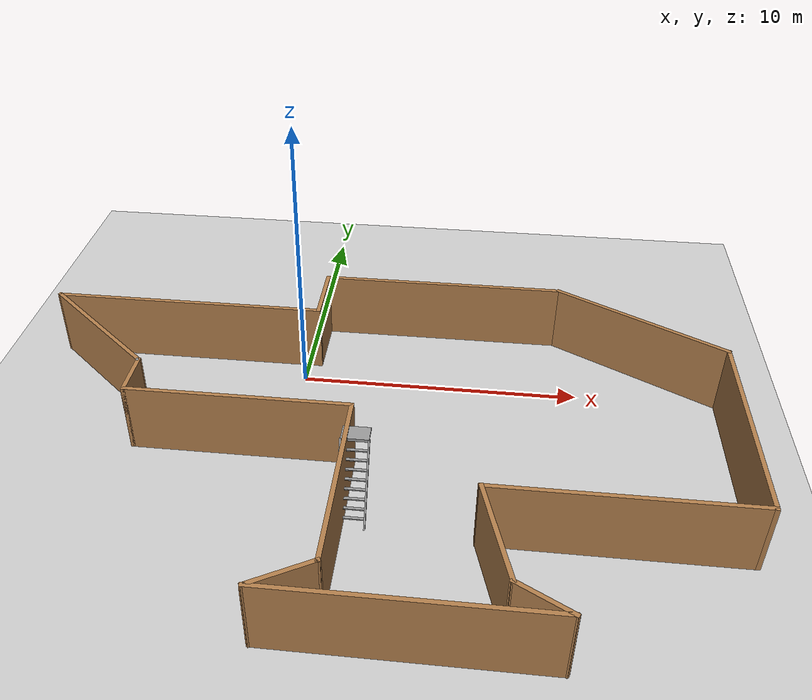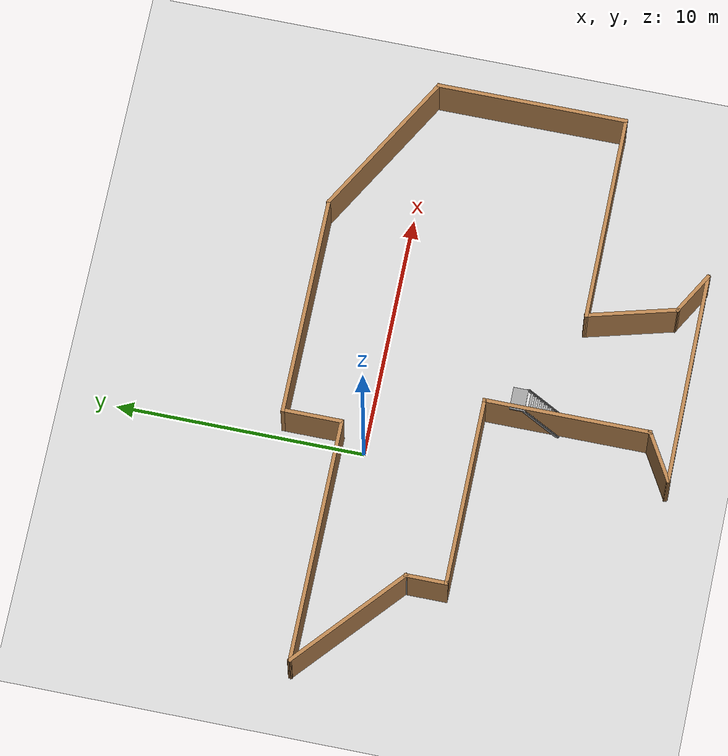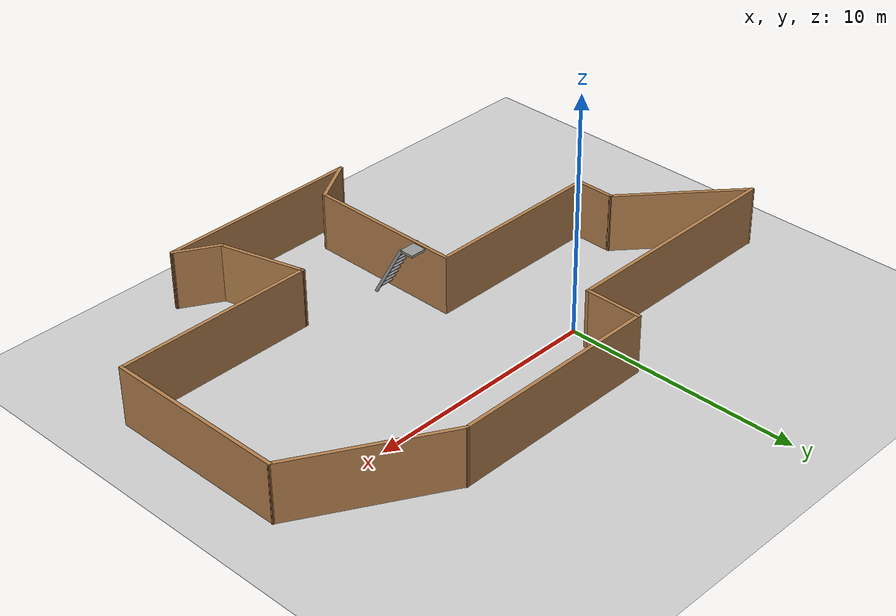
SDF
<sdf version="1.7">
 <world name="default">
  <light name="sun" type="directional">
   <pose>0 0 10 0 -0 0</pose>
   <diffuse>0.8 0.8 0.8 1</diffuse>
   <specular>0.2 0.2 0.2 1</specular>
   <attenuation>
    <range>1000</range>
    <constant>0.9</constant>
    <linear>0.01</linear>
    <quadratic>0.001</quadratic>
   </attenuation>
   <direction>-0.5 0.1 -0.9</direction>
   <spot><inner_angle>0</inner_angle><outer_angle>0</outer_angle><falloff>0</falloff></spot>
  </light>
  <model name="ground_plane">
   <static>1</static>
   <link name="link">
    <collision name="collision">
     <geometry><plane><normal>0 0 1</normal><size>100 100</size></plane></geometry>
     <surface>
      <contact><collide_bitmask>65535</collide_bitmask></contact>
      <friction><ode><mu>100</mu><mu2>50</mu2></ode></friction>
     </surface>
    </collision>
    <visual name="visual">
     <cast_shadows>0</cast_shadows>
     <geometry><plane><normal>0 0 1</normal><size>100 100</size></plane></geometry>
     <material>
      <script><uri>file://media/materials/scripts/gazebo.material</uri><name>Gazebo/Grey</name></script>
     </material>
    </visual>
   </link>
  </model>
  <gravity>0 0 -9.8</gravity>
  <magnetic_field>6e-06 2.3e-05 -4.2e-05</magnetic_field>
  <atmosphere type="adiabatic"/>
  <physics type="ode">
   <max_step_size>0.001</max_step_size>
   <real_time_factor>1</real_time_factor>
   <real_time_update_rate>1000</real_time_update_rate>
  </physics>
  <scene><ambient>0.4 0.4 0.4 1</ambient><background>0.7 0.7 0.7 1</background><shadows>1</shadows></scene>
  <spherical_coordinates>
   <surface_model>EARTH_WGS84</surface_model>
   <latitude_deg>0</latitude_deg>
   <longitude_deg>0</longitude_deg>
   <elevation>0</elevation>
   <heading_deg>0</heading_deg>
  </spherical_coordinates>
  <model name="new_world">
   <pose>2.77787 -4.33883 0 0 -0 0</pose>
   <link name="Wall_0">
    <collision name="Wall_0_Collision">
     <geometry><box><size>1.75 0.15 2.5</size></box></geometry>
     <pose>0 0 1.25 0 -0 0</pose>
    </collision>
    <visual name="Wall_0_Visual">
     <pose>0 0 1.25 0 -0 0</pose>
     <geometry><box><size>1.75 0.15 2.5</size></box></geometry>
     <material>
      <script><uri>file://media/materials/scripts/gazebo.material</uri><name>Gazebo/Wood</name></script>
      <ambient>1 1 1 1</ambient>
     </material>
     <meta><layer>0</layer></meta>
    </visual>
    <pose>-7.98787 0.798833 0 0 -0 -1.5708</pose>
   </link>
   <link name="Wall_1">
    <collision name="Wall_1_Collision">
     <geometry><box><size>7.75 0.15 2.5</size></box></geometry>
     <pose>0 0 1.25 0 -0 0</pose>
    </collision>
    <visual name="Wall_1_Visual">
     <pose>0 0 1.25 0 -0 0</pose>
     <geometry><box><size>7.75 0.15 2.5</size></box></geometry>
     <material>
      <script><uri>file://media/materials/scripts/gazebo.material</uri><name>Gazebo/Wood</name></script>
      <ambient>1 1 1 1</ambient>
     </material>
     <meta><layer>0</layer></meta>
    </visual>
    <pose>-4.18787 -0.001167 0 0 -0 0</pose>
   </link>
   <link name="Wall_10">
    <collision name="Wall_10_Collision">
     <geometry><box><size>9 0.15 2.5</size></box></geometry>
     <pose>0 0 1.25 0 -0 0</pose>
    </collision>
    <visual name="Wall_10_Visual">
     <pose>0 0 1.25 0 -0 0</pose>
     <geometry><box><size>9 0.15 2.5</size></box></geometry>
     <material>
      <script><uri>file://media/materials/scripts/gazebo.material</uri><name>Gazebo/Wood</name></script>
      <ambient>1 1 1 1</ambient>
     </material>
     <meta><layer>0</layer></meta>
    </visual>
    <pose>2.06881 7.65117 0 0 -0 3.14159</pose>
   </link>
   <link name="Wall_11">
    <collision name="Wall_11_Collision">
     <geometry><box><size>2.5 0.15 2.5</size></box></geometry>
     <pose>0 0 1.25 0 -0 0</pose>
    </collision>
    <visual name="Wall_11_Visual">
     <pose>0 0 1.25 0 -0 0</pose>
     <geometry><box><size>2.5 0.15 2.5</size></box></geometry>
     <material>
      <script><uri>file://media/materials/scripts/gazebo.material</uri><name>Gazebo/Wood</name></script>
      <ambient>1 1 1 1</ambient>
     </material>
     <meta><layer>0</layer></meta>
    </visual>
    <pose>-2.35619 6.47617 0 0 -0 -1.5708</pose>
   </link>
   <link name="Wall_12">
    <collision name="Wall_12_Collision">
     <geometry><box><size>10 0.15 2.5</size></box></geometry>
     <pose>0 0 1.25 0 -0 0</pose>
    </collision>
    <visual name="Wall_12_Visual">
     <pose>0 0 1.25 0 -0 0</pose>
     <geometry><box><size>10 0.15 2.5</size></box></geometry>
     <material>
      <script><uri>file://media/materials/scripts/gazebo.material</uri><name>Gazebo/Wood</name></script>
      <ambient>1 1 1 1</ambient>
     </material>
     <meta><layer>0</layer></meta>
    </visual>
    <pose>-7.28119 5.30117 0 0 -0 3.14159</pose>
   </link>
   <link name="Wall_13">
    <collision name="Wall_13_Collision">
     <geometry><box><size>5.76262 0.15 2.5</size></box></geometry>
     <pose>0 0 1.25 0 -0 0</pose>
    </collision>
    <visual name="Wall_13_Visual">
     <pose>0 0 1.25 0 -0 0</pose>
     <geometry><box><size>5.76262 0.15 2.5</size></box></geometry>
     <material>
      <script><uri>file://media/materials/scripts/gazebo.material</uri><name>Gazebo/Wood</name></script>
      <ambient>1 1 1 1</ambient>
     </material>
     <meta><layer>0</layer></meta>
    </visual>
    <pose>-10.097 3.45 0 0 -0 -0.720346</pose>
   </link>
   <link name="Wall_14">
    <collision name="Wall_14_Collision">
     <geometry><box><size>0.15 0.15 2.5</size></box></geometry>
     <pose>0 0 1.25 0 -0 0</pose>
    </collision>
    <visual name="Wall_14_Visual">
     <pose>0 0 1.25 0 -0 0</pose>
     <geometry><box><size>0.15 0.15 2.5</size></box></geometry>
     <material>
      <script><uri>file://media/materials/scripts/gazebo.material</uri><name>Gazebo/Grey</name></script>
      <ambient>1 1 1 1</ambient>
     </material>
     <meta><layer>0</layer></meta>
    </visual>
    <pose>-7.98787 1.59883 0 0 -0 0</pose>
   </link>
   <link name="Wall_2">
    <collision name="Wall_2_Collision">
     <geometry><box><size>6.75 0.15 2.5</size></box></geometry>
     <pose>0 0 1.25 0 -0 0</pose>
    </collision>
    <visual name="Wall_2_Visual">
     <pose>0 0 1.25 0 -0 0</pose>
     <geometry><box><size>6.75 0.15 2.5</size></box></geometry>
     <material>
      <script><uri>file://media/materials/scripts/gazebo.material</uri><name>Gazebo/Wood</name></script>
      <ambient>1 1 1 1</ambient>
     </material>
     <meta><layer>0</layer></meta>
    </visual>
    <pose>-0.387873 -3.30117 0 0 -0 -1.5708</pose>
   </link>
   <link name="Wall_3">
    <collision name="Wall_3_Collision">
     <geometry><box><size>2.25 0.15 2.5</size></box></geometry>
     <pose>0 0 1.25 0 -0 0</pose>
    </collision>
    <visual name="Wall_3_Visual">
     <pose>0 0 1.25 0 -0 0</pose>
     <geometry><box><size>2.25 0.15 2.5</size></box></geometry>
     <material>
      <script><uri>file://media/materials/scripts/gazebo.material</uri><name>Gazebo/Wood</name></script>
      <ambient>1 1 1 1</ambient>
     </material>
     <meta><layer>0</layer></meta>
    </visual>
    <pose>-1.2972 -7.12617 0 0 -0 -2.61799</pose>
   </link>
   <link name="Wall_4">
    <collision name="Wall_4_Collision">
     <geometry><box><size>8.75 0.15 2.5</size></box></geometry>
     <pose>0 0 1.25 0 -0 0</pose>
    </collision>
    <visual name="Wall_4_Visual">
     <pose>0 0 1.25 0 -0 0</pose>
     <geometry><box><size>8.75 0.15 2.5</size></box></geometry>
     <material>
      <script><uri>file://media/materials/scripts/gazebo.material</uri><name>Gazebo/Wood</name></script>
      <ambient>1 1 1 1</ambient>
     </material>
     <meta><layer>0</layer></meta>
    </visual>
    <pose>2.09347 -7.65117 0 0 -0 0</pose>
   </link>
   <link name="Wall_5">
    <collision name="Wall_5_Collision">
     <geometry><box><size>2 0.15 2.5</size></box></geometry>
     <pose>0 0 1.25 0 -0 0</pose>
    </collision>
    <visual name="Wall_5_Visual">
     <pose>0 0 1.25 0 -0 0</pose>
     <geometry><box><size>2 0.15 2.5</size></box></geometry>
     <material>
      <script><uri>file://media/materials/scripts/gazebo.material</uri><name>Gazebo/Wood</name></script>
      <ambient>1 1 1 1</ambient>
     </material>
     <meta><layer>0</layer></meta>
    </visual>
    <pose>5.5924 -7.18867 0 0 -0 2.61799</pose>
   </link>
   <link name="Wall_6">
    <collision name="Wall_6_Collision">
     <geometry><box><size>3.75 0.15 2.5</size></box></geometry>
     <pose>0 0 1.25 0 -0 0</pose>
    </collision>
    <visual name="Wall_6_Visual">
     <pose>0 0 1.25 0 -0 0</pose>
     <geometry><box><size>3.75 0.15 2.5</size></box></geometry>
     <material>
      <script><uri>file://media/materials/scripts/gazebo.material</uri><name>Gazebo/Wood</name></script>
      <ambient>1 1 1 1</ambient>
     </material>
     <meta><layer>0</layer></meta>
    </visual>
    <pose>4.32545 -4.9875 0 0 -0 1.8326</pose>
   </link>
   <link name="Wall_7">
    <collision name="Wall_7_Collision">
     <geometry><box><size>8.5 0.15 2.5</size></box></geometry>
     <pose>0 0 1.25 0 -0 0</pose>
    </collision>
    <visual name="Wall_7_Visual">
     <pose>0 0 1.25 0 -0 0</pose>
     <geometry><box><size>8.5 0.15 2.5</size></box></geometry>
     <material>
      <script><uri>file://media/materials/scripts/gazebo.material</uri><name>Gazebo/Wood</name></script>
      <ambient>1 1 1 1</ambient>
     </material>
     <meta><layer>0</layer></meta>
    </visual>
    <pose>8.03458 -3.24883 0 0 -0 0</pose>
   </link>
   <link name="Wall_8">
    <collision name="Wall_8_Collision">
     <geometry><box><size>7.75 0.15 2.5</size></box></geometry>
     <pose>0 0 1.25 0 -0 0</pose>
    </collision>
    <visual name="Wall_8_Visual">
     <pose>0 0 1.25 0 -0 0</pose>
     <geometry><box><size>7.75 0.15 2.5</size></box></geometry>
     <material>
      <script><uri>file://media/materials/scripts/gazebo.material</uri><name>Gazebo/Wood</name></script>
      <ambient>1 1 1 1</ambient>
     </material>
     <meta><layer>0</layer></meta>
    </visual>
    <pose>12.2096 0.551166 0 0 -0 1.5708</pose>
   </link>
   <link name="Wall_9">
    <collision name="Wall_9_Collision">
     <geometry><box><size>6.75 0.15 2.5</size></box></geometry>
     <pose>0 0 1.25 0 -0 0</pose>
    </collision>
    <visual name="Wall_9_Visual">
     <pose>0 0 1.25 0 -0 0</pose>
     <geometry><box><size>6.75 0.15 2.5</size></box></geometry>
     <material>
      <script><uri>file://media/materials/scripts/gazebo.material</uri><name>Gazebo/Wood</name></script>
      <ambient>1 1 1 1</ambient>
     </material>
     <meta><layer>0</layer></meta>
    </visual>
    <pose>9.35169 6.00117 0 0 -0 2.61799</pose>
   </link>
   <static>1</static>
  </model>
  <model name="ladder_60deg_0rails">
   <static>1</static>
   <link name="step0">
    <pose>0 0.15396 0.266667 0 -0 0</pose>
    <inertial>
     <mass>9.75482</mass>
     <inertia>
      <ixx>0.00957124</ixx>
      <iyy>0.65963</iyy>
      <izz>0.666842</izz>
      <ixy>0</ixy>
      <ixz>0</ixz>
      <iyz>0</iyz>
     </inertia>
    </inertial>
    <collision name="collision"><geometry><box><size>0.9 0.1016 0.0381</size></box></geometry></collision>
    <visual name="visual">
     <geometry><box><size>0.9 0.1016 0.0381</size></box></geometry>
     <material>
      <script><uri>file://media/materials/scripts/gazebo.material</uri><name>Gazebo/Grey</name></script>
     </material>
    </visual>
   </link>
   <link name="step1">
    <pose>0 0.30792 0.533333 0 -0 0</pose>
    <inertial>
     <mass>9.75482</mass>
     <inertia>
      <ixx>0.00957124</ixx>
      <iyy>0.65963</iyy>
      <izz>0.666842</izz>
      <ixy>0</ixy>
      <ixz>0</ixz>
      <iyz>0</iyz>
     </inertia>
    </inertial>
    <collision name="collision"><geometry><box><size>0.9 0.1016 0.0381</size></box></geometry></collision>
    <visual name="visual">
     <geometry><box><size>0.9 0.1016 0.0381</size></box></geometry>
     <material>
      <script><uri>file://media/materials/scripts/gazebo.material</uri><name>Gazebo/Grey</name></script>
     </material>
    </visual>
   </link>
   <link name="step2">
    <pose>0 0.46188 0.8 0 -0 0</pose>
    <inertial>
     <mass>9.75482</mass>
     <inertia>
      <ixx>0.00957124</ixx>
      <iyy>0.65963</iyy>
      <izz>0.666842</izz>
      <ixy>0</ixy>
      <ixz>0</ixz>
      <iyz>0</iyz>
     </inertia>
    </inertial>
    <collision name="collision"><geometry><box><size>0.9 0.1016 0.0381</size></box></geometry></collision>
    <visual name="visual">
     <geometry><box><size>0.9 0.1016 0.0381</size></box></geometry>
     <material>
      <script><uri>file://media/materials/scripts/gazebo.material</uri><name>Gazebo/Grey</name></script>
     </material>
    </visual>
   </link>
   <link name="step3">
    <pose>0 0.61584 1.06667 0 -0 0</pose>
    <inertial>
     <mass>9.75482</mass>
     <inertia>
      <ixx>0.00957124</ixx>
      <iyy>0.65963</iyy>
      <izz>0.666842</izz>
      <ixy>0</ixy>
      <ixz>0</ixz>
      <iyz>0</iyz>
     </inertia>
    </inertial>
    <collision name="collision"><geometry><box><size>0.9 0.1016 0.0381</size></box></geometry></collision>
    <visual name="visual">
     <geometry><box><size>0.9 0.1016 0.0381</size></box></geometry>
     <material>
      <script><uri>file://media/materials/scripts/gazebo.material</uri><name>Gazebo/Grey</name></script>
     </material>
    </visual>
   </link>
   <link name="step4">
    <pose>0 0.7698 1.33333 0 -0 0</pose>
    <inertial>
     <mass>9.75482</mass>
     <inertia>
      <ixx>0.00957124</ixx>
      <iyy>0.65963</iyy>
      <izz>0.666842</izz>
      <ixy>0</ixy>
      <ixz>0</ixz>
      <iyz>0</iyz>
     </inertia>
    </inertial>
    <collision name="collision"><geometry><box><size>0.9 0.1016 0.0381</size></box></geometry></collision>
    <visual name="visual">
     <geometry><box><size>0.9 0.1016 0.0381</size></box></geometry>
     <material>
      <script><uri>file://media/materials/scripts/gazebo.material</uri><name>Gazebo/Grey</name></script>
     </material>
    </visual>
   </link>
   <link name="step5">
    <pose>0 0.92376 1.6 0 -0 0</pose>
    <inertial>
     <mass>9.75482</mass>
     <inertia>
      <ixx>0.00957124</ixx>
      <iyy>0.65963</iyy>
      <izz>0.666842</izz>
      <ixy>0</ixy>
      <ixz>0</ixz>
      <iyz>0</iyz>
     </inertia>
    </inertial>
    <collision name="collision"><geometry><box><size>0.9 0.1016 0.0381</size></box></geometry></collision>
    <visual name="visual">
     <geometry><box><size>0.9 0.1016 0.0381</size></box></geometry>
     <material>
      <script><uri>file://media/materials/scripts/gazebo.material</uri><name>Gazebo/Grey</name></script>
     </material>
    </visual>
   </link>
   <link name="step6">
    <pose>0 1.07772 1.86667 0 -0 0</pose>
    <inertial>
     <mass>9.75482</mass>
     <inertia>
      <ixx>0.00957124</ixx>
      <iyy>0.65963</iyy>
      <izz>0.666842</izz>
      <ixy>0</ixy>
      <ixz>0</ixz>
      <iyz>0</iyz>
     </inertia>
    </inertial>
    <collision name="collision"><geometry><box><size>0.9 0.1016 0.0381</size></box></geometry></collision>
    <visual name="visual">
     <geometry><box><size>0.9 0.1016 0.0381</size></box></geometry>
     <material>
      <script><uri>file://media/materials/scripts/gazebo.material</uri><name>Gazebo/Grey</name></script>
     </material>
    </visual>
   </link>
   <link name="step7">
    <pose>0 1.23168 2.13333 0 -0 0</pose>
    <inertial>
     <mass>9.75482</mass>
     <inertia>
      <ixx>0.00957124</ixx>
      <iyy>0.65963</iyy>
      <izz>0.666842</izz>
      <ixy>0</ixy>
      <ixz>0</ixz>
      <iyz>0</iyz>
     </inertia>
    </inertial>
    <collision name="collision"><geometry><box><size>0.9 0.1016 0.0381</size></box></geometry></collision>
    <visual name="visual">
     <geometry><box><size>0.9 0.1016 0.0381</size></box></geometry>
     <material>
      <script><uri>file://media/materials/scripts/gazebo.material</uri><name>Gazebo/Grey</name></script>
     </material>
    </visual>
   </link>
   <link name="landing">
    <pose>0 1.68564 2.4 0 -0 0</pose>
    <inertial>
     <mass>57.6072</mass>
     <inertia><ixx>1.73518</ixx><iyy>3.89545</iyy><izz>5.6167</izz><ixy>0</ixy><ixz>0</ixz><iyz>0</iyz></inertia>
    </inertial>
    <collision name="collision"><geometry><box><size>0.9 0.6 0.1016</size></box></geometry></collision>
    <visual name="visual">
     <geometry><box><size>0.9 0.6 0.1016</size></box></geometry>
     <material>
      <script><uri>file://media/materials/scripts/gazebo.material</uri><name>Gazebo/Grey</name></script>
     </material>
    </visual>
   </link>
   <link name="left_side_wall">
    <pose>-0.45 0.69282 1.2 1.0472 -0 0</pose>
    <collision name="collision"><geometry><box><size>0.0508 2.85128 0.13</size></box></geometry></collision>
    <visual name="visual">
     <geometry><box><size>0.0508 2.85128 0.13</size></box></geometry>
     <material>
      <script><uri>file://media/materials/scripts/gazebo.material</uri><name>Gazebo/Grey</name></script>
     </material>
    </visual>
   </link>
   <link name="right_side_wall">
    <pose>0.45 0.69282 1.2 1.0472 -0 0</pose>
    <collision name="collision"><geometry><box><size>0.0508 2.85128 0.13</size></box></geometry></collision>
    <visual name="visual">
     <geometry><box><size>0.0508 2.85128 0.13</size></box></geometry>
     <material>
      <script><uri>file://media/materials/scripts/gazebo.material</uri><name>Gazebo/Grey</name></script>
     </material>
    </visual>
   </link>
   <pose>2.70625 -7.33783 0 0 -0 0</pose>
  </model>
 </world>
</sdf>
